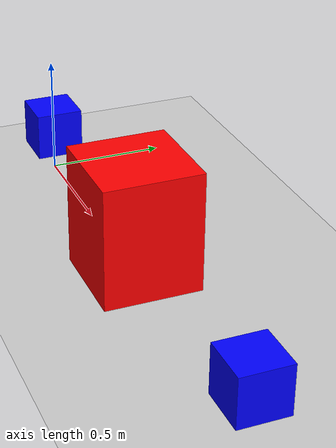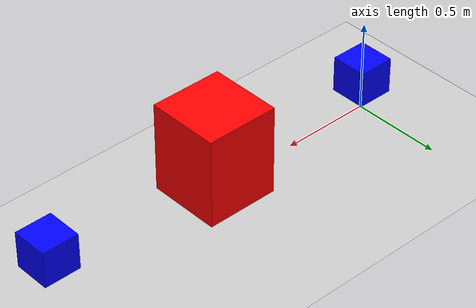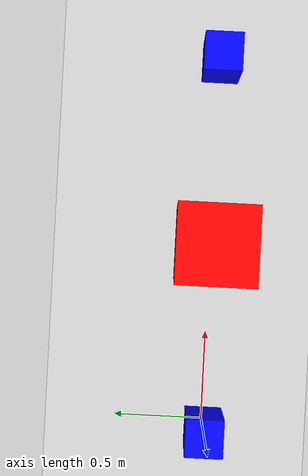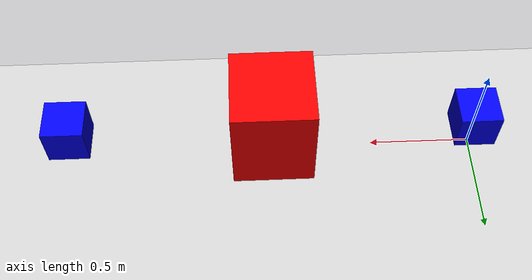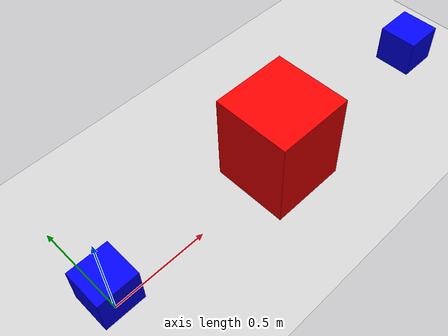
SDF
<?xml version="1.0" ?>
<sdf version="1.6">
  <world name="uwb_test_world">

    <light name="sun" type="directional">
      <direction>-0.5 0.5 -1</direction>
    </light>

    <model name="ground_plane">
      <static>true</static>
      <link name="ground_link">
        <collision name="collision">
          <geometry><plane><normal>0 0 1</normal><size>20 20</size></plane></geometry>
        </collision>
        <visual name="visual">
          <geometry><plane><normal>0 0 1</normal><size>20 20</size></plane></geometry>
        </visual>
      </link>
    </model>

    <!-- Anchor 1 -->
    <include>
      <uri>model://uwb_anchor_01</uri>
      <name>uwb_anchor_01</name>
      <pose>0 0 0.1 0 0 0</pose>
    </include>

    <!-- Anchor 2 -->
    <include>
      <uri>model://uwb_anchor_02</uri>
      <name>uwb_anchor_02</name>
      <pose>2 0 0.1 0 0 3.1416</pose>
    </include>

    <!-- ✅ 可移動的障礙物 -->
    <model name="obstacle_box">
      <pose>1 0 0.25 0 0 0</pose> <!-- 初始擋在兩個 anchor 中間 -->
      <static>false</static> <!-- 允許拖動 -->
      <link name="link">
        <collision name="collision">
          <geometry>
            <box><size>0.4 0.4 0.5</size></box>
          </geometry>
        </collision>
        <visual name="visual">
          <geometry>
            <box><size>0.4 0.4 0.5</size></box>
          </geometry>
          <material>
            <ambient>1 0 0 1</ambient> <!-- 紅色 -->
          </material>
        </visual>
      </link>
    </model>

  </world>
</sdf>

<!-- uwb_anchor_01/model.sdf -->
<sdf version="1.6">
  <model name="uwb_anchor_01">
    <static>true</static>

    <link name="uwb_anchor_01_link">
      <pose>0 0 0.1 0 0 0</pose>

      <!-- 碰撞體 -->
      <collision name="collision">
        <geometry>
          <box><size>0.2 0.2 0.2</size></box>
        </geometry>
      </collision>

      <!-- 外觀 -->
      <visual name="visual">
        <geometry>
          <box><size>0.2 0.2 0.2</size></box>
        </geometry>
        <material>
          <ambient>0 0 1 1</ambient>
        </material>
      </visual>
    </link>

    <!-- ✅ 插入自訂 UWB 掃描 Plugin -->
    <plugin name="uwb_scan_plugin_NLOS" filename="libuwb_scan_plugin_NLOS.so"/>

  </model>
</sdf>

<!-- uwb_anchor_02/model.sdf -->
<sdf version="1.6">
  <model name="uwb_anchor_02">
    <static>true</static>

    <link name="uwb_anchor_02_link">
      <pose>0 0 0.1 0 0 0</pose>

      <!-- 碰撞體 -->
      <collision name="collision">
        <geometry>
          <box><size>0.2 0.2 0.2</size></box>
        </geometry>
      </collision>

      <!-- 外觀 -->
      <visual name="visual">
        <geometry>
          <box><size>0.2 0.2 0.2</size></box>
        </geometry>
        <material>
          <ambient>0 0 1 1</ambient>
        </material>
      </visual>
    </link>

    <!-- ✅ 插入自訂 UWB 掃描 Plugin -->
    <plugin name="uwb_scan_plugin_NLOS" filename="libuwb_scan_plugin_NLOS.so"/>

  </model>
</sdf>
